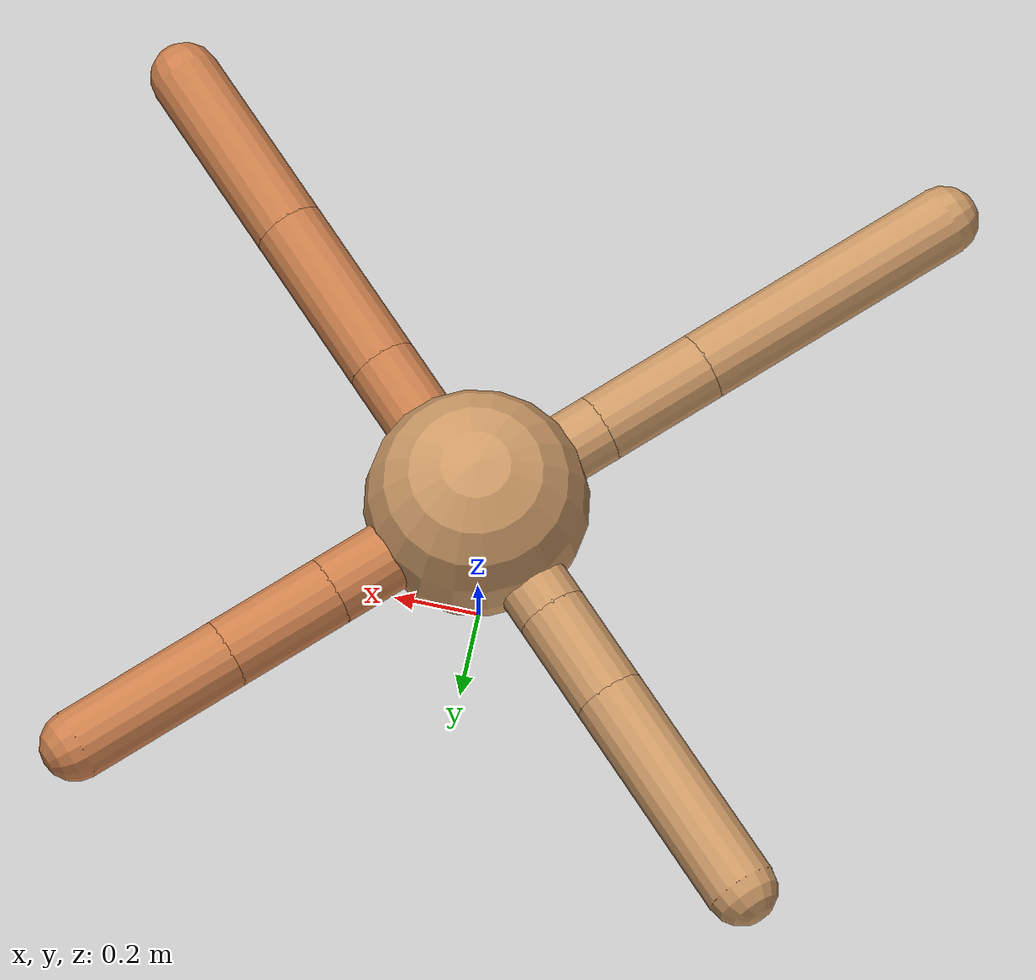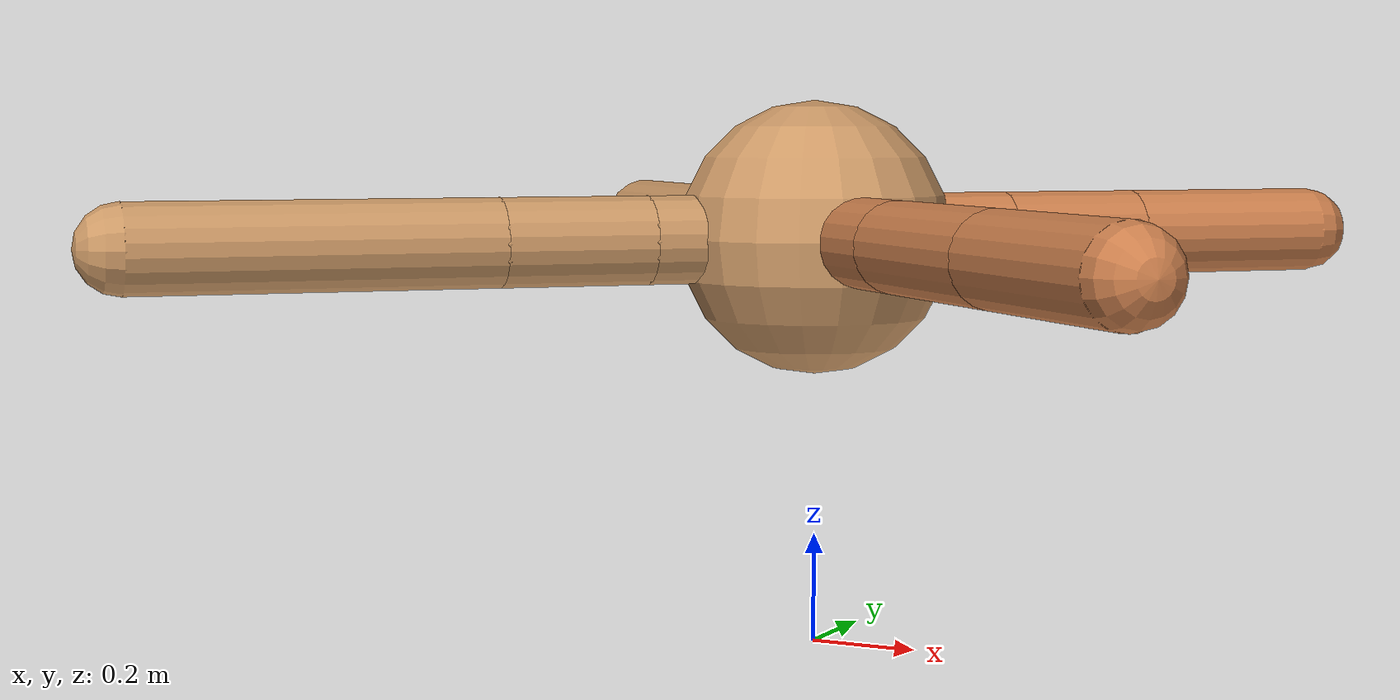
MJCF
<mujoco model="ant">
  <compiler angle="degree" coordinate="local" inertiafromgeom="true" />
  <option integrator="RK4" timestep="0.01" />
  <custom>
    <numeric data="0.0 0.0 0.55 1.0 0.0 0.0 0.0 0.0 1.0 0.0 -1.0 0.0 -1.0 0.0 1.0" name="init_qpos" />
  </custom>
  <default>
    <joint armature="1" damping="1" limited="true" />
    <geom conaffinity="0" condim="3" density="5.0" friction="1.5 0.1 0.1" margin="0.01" rgba="0.8 0.6 0.4 1" />
  </default>
  <worldbody>
    <body name="torso" pos="0 0 0.75">
      <geom name="torso_geom" pos="0 0 0" size="0.25" type="sphere" />

      <body name="front_left_leg" pos="0 0 0">
        <geom fromto="0.0 0.0 0.0 0.26834906371319817 0.26834906371319817 0.0" name="aux_1_geom" size="0.08" type="capsule" rgba=".8 .5 .3 1" />
        <body name="aux_1" pos="0.26834906371319817 0.26834906371319817 0.0">
          <joint axis="0 0 1" name="hip_1" pos="0.0 0.0 0.0" range="-40 40" type="hinge" />
          <geom fromto="0.0 0.0 0.0 0.1887500167058895 0.1887500167058895 0.0" name="left_leg_geom" size="0.08" type="capsule" rgba=".8 .5 .3 1" />
          <body pos="0.1887500167058895 0.1887500167058895 0.0" name="front_left_foot">
            <joint axis="-1 1 0" name="ankle_1" pos="0.0 0.0 0.0" range="30 100" type="hinge" />
            <geom fromto="0.0 0.0 0.0 0.2710036828425389 0.2710036828425389 0.0" name="left_ankle_geom" size="0.08" type="capsule" rgba=".8 .5 .3 1" />
          </body>
        </body>
      </body>
      <body name="front_right_leg" pos="0 0 0">
        <geom fromto="0.0 0.0 0.0 -0.21548437593338937 0.21548437593338937 0.0" name="aux_2_geom" size="0.08" type="capsule" />
        <body name="aux_2" pos="-0.21548437593338937 0.21548437593338937 0.0">
          <joint axis="0 0 1" name="hip_2" pos="0.0 0.0 0.0" range="-40 40" type="hinge" />
          <geom fromto="0.0 0.0 0.0 -0.16105557613641078 0.16105557613641078 0.0" name="right_leg_geom" size="0.08" type="capsule" />
          <body pos="-0.16105557613641078 0.16105557613641078 0.0" name="front_right_foot">
            <joint axis="1 1 0" name="ankle_2" pos="0.0 0.0 0.0" range="-100 -30" type="hinge" />
            <geom fromto="0.0 0.0 0.0 -0.3659223161935431 0.3659223161935431 0.0" name="right_ankle_geom" size="0.08" type="capsule" />
          </body>
        </body>
      </body>
      <body name="left_back_leg" pos="0 0 0">
        <geom fromto="0.0 0.0 0.0 -0.22673958433552566 -0.22673958433552566 0.0" name="aux_3_geom" size="0.08" type="capsule" />
        <body name="aux_3" pos="-0.22673958433552566 -0.22673958433552566 0.0">
          <joint axis="0 0 1" name="hip_3" pos="0.0 0.0 0.0" range="-40 40" type="hinge" />
          <geom fromto="0.0 0.0 0.0 -0.19122809631913978 -0.19122809631913978 0.0" name="back_leg_geom" size="0.08" type="capsule" />
          <body pos="-0.19122809631913978 -0.19122809631913978 0.0" name="left_back_foot">
            <joint axis="-1 1 0" name="ankle_3" pos="0.0 0.0 0.0" range="-100 -30" type="hinge" />
            <geom fromto="0.0 0.0 0.0 -0.4579228382523338 -0.4579228382523338 0.0" name="third_ankle_geom" size="0.08" type="capsule" />
          </body>
        </body>
      </body>
      <body name="right_back_leg" pos="0 0 0">
        <geom fromto="0.0 0.0 0.0 0.2732423836505455 -0.2732423836505455 0.0" name="aux_4_geom" size="0.08" type="capsule" rgba=".8 .5 .3 1" />
        <body name="aux_4" pos="0.2732423836505455 -0.2732423836505455 0.0">
          <joint axis="0 0 1" name="hip_4" pos="0.0 0.0 0.0" range="-40 40" type="hinge" />
          <geom fromto="0.0 0.0 0.0 0.27522838241552056 -0.27522838241552056 0.0" name="rightback_leg_geom" size="0.08" type="capsule" rgba=".8 .5 .3 1" />
          <body pos="0.27522838241552056 -0.27522838241552056 0.0" name="right_back_foot">
            <joint axis="1 1 0" name="ankle_4" pos="0.0 0.0 0.0" range="30 100" type="hinge" />
            <geom fromto="0.0 0.0 0.0 0.31248230270468663 -0.31248230270468663 0.0" name="fourth_ankle_geom" size="0.08" type="capsule" rgba=".8 .5 .3 1" />
          </body>
        </body>
      </body>
    </body>
  </worldbody>
  <actuator>
    <motor ctrllimited="true" ctrlrange="-1.0 1.0" joint="hip_4" gear="150" />
    <motor ctrllimited="true" ctrlrange="-1.0 1.0" joint="ankle_4" gear="150" />
    <motor ctrllimited="true" ctrlrange="-1.0 1.0" joint="hip_1" gear="150" />
    <motor ctrllimited="true" ctrlrange="-1.0 1.0" joint="ankle_1" gear="150" />
    <motor ctrllimited="true" ctrlrange="-1.0 1.0" joint="hip_2" gear="150" />
    <motor ctrllimited="true" ctrlrange="-1.0 1.0" joint="ankle_2" gear="150" />
    <motor ctrllimited="true" ctrlrange="-1.0 1.0" joint="hip_3" gear="150" />
    <motor ctrllimited="true" ctrlrange="-1.0 1.0" joint="ankle_3" gear="150" />
  </actuator>
</mujoco>
